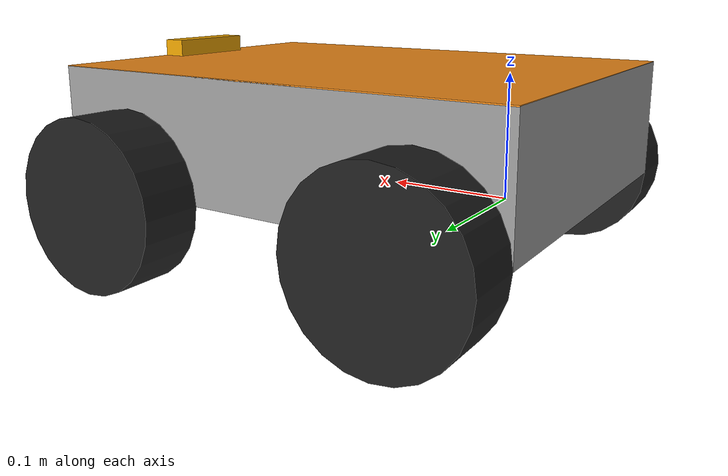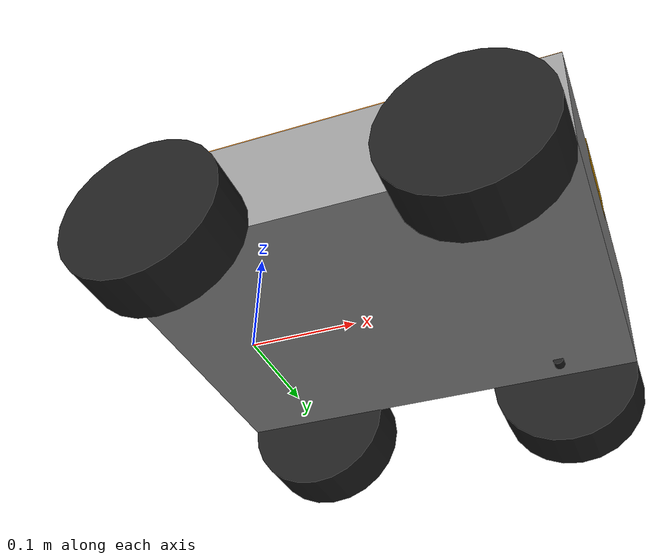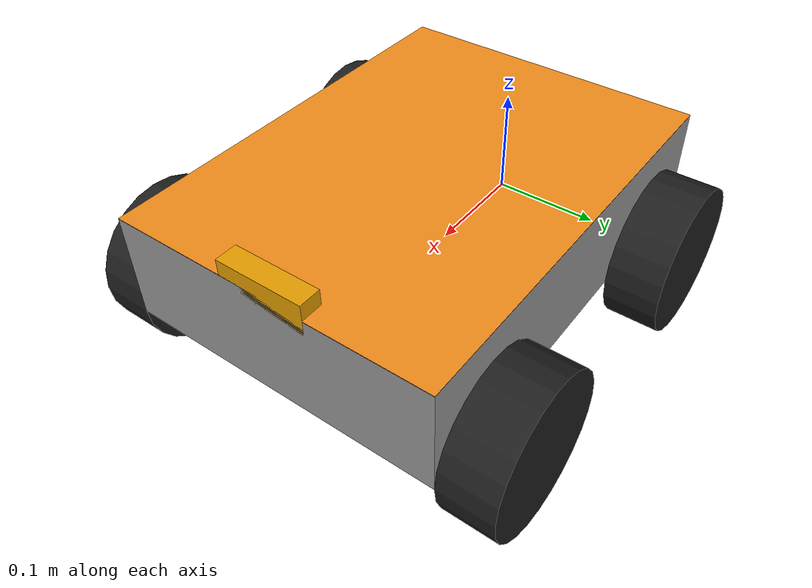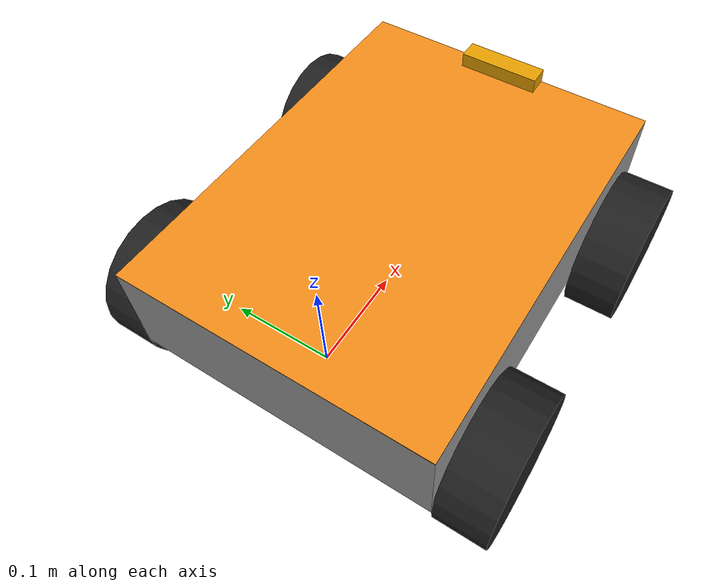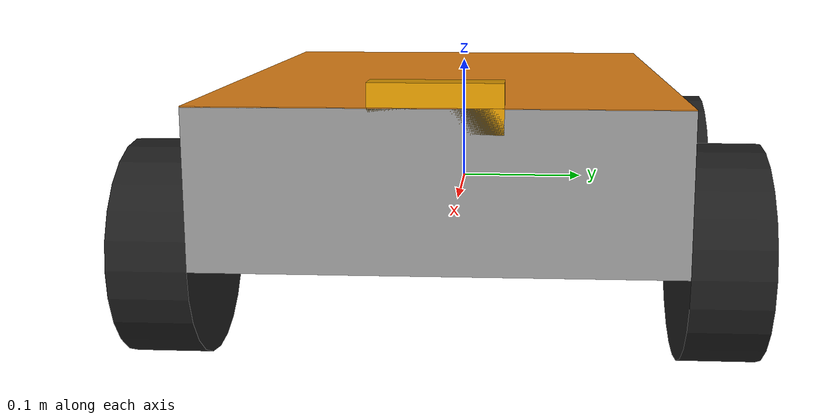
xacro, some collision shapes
<?xml version="1.0"?>
<robot
  name="akm" xmlns:xacro="http://ros.org/wiki/xacro">
  <xacro:include filename="$(find akm_simu)/urdf/ackermann.xacro"/>
  <xacro:include filename="$(find akm_simu)/urdf/akm_ackermann_model.gazebo.xacro"/>
  <xacro:include filename="$(find akm_simu)/urdf/common_properties.xacro"/>
  <xacro:include filename="$(find akm_simu)/urdf/kinect_gazebo.xacro"/>

  <xacro:property name="kinect_offset_x" value="0.320" />
  <xacro:property name="kinect_offset_y" value="0.0" />
  <xacro:property name="kinect_offset_z" value="0.1" />
  <xacro:property name="M_PI" value="3.14159" />

  <xacro:kinect_camera prefix="camera"/>
  <joint name="kinect_frame_joint" type="fixed">
    <origin xyz="${kinect_offset_x} ${kinect_offset_y} ${kinect_offset_z}" rpy="0 0 0" />
    <parent link="ORB_SLAM3"/>
    <child link="camera_link"/>
  </joint>

  <!-- Body -->
  <link
    name="ORB_SLAM3">
    <inertial>
      <origin
        xyz="0 0 0"
        rpy="0 0 0" />
      <mass
        value="5" />
      <inertia
        ixx="0.041667"
        ixy="0.0"
        ixz="0.0"
        iyy="0.070833"
        iyz="0.0"
        izz="0.104167" />
    </inertial>
    <visual>
      <origin
        xyz="0.13 0 0.05"
        rpy="0 0 0" />
      <geometry>
        <box size="0.4 0.3 0.1" />
      </geometry>
      <material name="grey" />
    </visual>
    <collision>
      <origin
        xyz="0.13 0 0.05"
        rpy="0 0 0" />
      <geometry>
        <box size="0.4 0.2 0.1" />
      </geometry>
    </collision>
  </link>

  <!-- Picture -->
  <link
    name="pic_link">
    <visual>
      <origin
        xyz="0 0 0"
        rpy="0 0 0" />
      <geometry>
        <box size="0.4 0.3 0.001" />
      </geometry>
      <material name="orange" />
    </visual>
  </link>
  <joint
    name="joint_pic"
    type="fixed">
    <origin
      xyz="0.13 0.0 0.1"
      rpy="0 0 0" />
    <parent
      link="ORB_SLAM3" />
    <child
      link="pic_link" />
  </joint>

  <!-- Wheel -->
  <link name="left_steering_hinge">
    <inertial>
      <origin xyz="0 0 0" rpy="0 0 0" />
      <mass value="0.5" />
      <inertia ixx="1.35E-05" ixy="0" ixz="0" iyy="2.5E-05" iyz="0" izz="1.35E-05" />
    </inertial>
    <visual>
      <origin xyz="0 0 0" rpy="1.57 0 0" />
      <geometry>
        <cylinder length="0.01" radius="0.005" />
      </geometry>
      <material name="black" />
    </visual>
    <collision>
      <origin xyz="0 0 0" rpy="1.57 0 0" />
      <geometry>
        <cylinder length="0.01" radius="0.005" />
      </geometry>
    </collision>
  </link>
  <joint name="left_steering_hinge_joint" type="revolute">
    <origin xyz="0.26 0.125 0" rpy="0 0 0" />
    <parent link="ORB_SLAM3" />
    <child link="left_steering_hinge" />
    <axis xyz="0 0 1" />
    <limit lower="-0.6" upper="0.6" effort="5.0" velocity="1000.0"/>
  </joint>
  <xacro:steering_hinge_transmission name="left_steering_hinge" />

  <link name="left_front_wheel">
    <inertial>
      <origin xyz="0 0 0" rpy="0 0 0" />
      <mass value="2" />
      <inertia ixx="0.002867" ixy="0" ixz="0" iyy="0.0049" iyz="0" izz="0.002867" />
    </inertial>
    <visual>
      <origin xyz="0 0 0" rpy="1.57 0 0" />
      <geometry>
        <cylinder length="0.05" radius="0.07" />
      </geometry>
      <material name="black" />
    </visual>
    <collision>
      <origin xyz="0 0 0" rpy="1.57 0 0" />
      <geometry>
        <cylinder length="0.05" radius="0.07" />
      </geometry>
    </collision>
  </link>
  <joint name="left_front_wheel_joint" type="continuous">
    <origin xyz="0 0.05 0" rpy="0 0 0" />
    <parent link="left_steering_hinge" />
    <child link="left_front_wheel" />
    <axis xyz="0 1 0" />
    <limit effort="0" velocity="1000" />
  </joint>
  <xacro:wheel_transmission name="left_front_wheel" />

  <link name="right_steering_hinge">
    <inertial>
      <origin xyz="0 0 0" rpy="0 0 0" />
      <mass value="0.5" />
      <inertia ixx="1.35E-05" ixy="0" ixz="0" iyy="2.5E-05" iyz="0" izz="1.35E-05" />
    </inertial>
    <visual>
      <origin xyz="0 0 0" rpy="1.57 0 0" />
      <geometry>
        <cylinder length="0.01" radius="0.005" />
      </geometry>
      <material name="black" />
    </visual>
    <collision>
      <origin xyz="0 0 0" rpy="1.57 0 0" />
      <geometry>
        <cylinder length="0.01" radius="0.005" />
      </geometry>
    </collision>
  </link>
  <joint name="right_steering_hinge_joint" type="revolute">
    <origin xyz="0.26 -0.125 0" rpy="0 0 0" />
    <parent link="ORB_SLAM3" />
    <child link="right_steering_hinge" />
    <axis xyz="0 0 1" />
    <limit lower="-0.6" upper="0.6" effort="5.0" velocity="1000.0"/>
  </joint>
  <xacro:steering_hinge_transmission name="right_steering_hinge" />

  <link name="right_front_wheel">
    <inertial>
      <origin xyz="0 0 0" rpy="0 0 0" />
      <mass value="2" />
      <inertia ixx="0.002867" ixy="0" ixz="0" iyy="0.0049" iyz="0" izz="0.002867" />
    </inertial>
    <visual>
      <origin xyz="0 0 0" rpy="1.57 0 0" />
      <geometry>
        <cylinder length="0.05" radius="0.07" />
      </geometry>
      <material name="black" />
    </visual>
    <collision>
      <origin xyz="0 0 0" rpy="1.57 0 0" />
      <geometry>
        <cylinder length="0.05" radius="0.07" />
      </geometry>
    </collision>
  </link>
  <joint name="right_front_wheel_joint" type="continuous">
    <origin xyz="0 -0.05 0" rpy="0 0 0" />
    <parent link="right_steering_hinge" />
    <child link="right_front_wheel" />
    <axis xyz="0 1 0" />
    <limit effort="0" velocity="1000" />
  </joint>
  <xacro:wheel_transmission name="right_front_wheel" />

  <link name="left_rear_wheel">
    <inertial>
      <origin xyz="0 0 0" rpy="0 0 0" />
      <mass value="2" />
      <inertia ixx="0.002867" ixy="0" ixz="0" iyy="0.0049" iyz="0" izz="0.002867" />
    </inertial>
    <visual>
      <origin xyz="0 0 0" rpy="1.57 0 0" />
      <geometry>
        <cylinder length="0.05" radius="0.07" />
      </geometry>
      <material name="black" />
    </visual>
    <collision>
      <origin xyz="0 0 0" rpy="1.57 0 0" />
      <geometry>
        <cylinder length="0.05" radius="0.07" />
      </geometry>
    </collision>
  </link>
  <joint name="left_rear_wheel_joint" type="continuous">
    <origin xyz="0 0.175 0" rpy="0 0 0" />
    <parent link="ORB_SLAM3" />
    <child link="left_rear_wheel" />
    <axis xyz="0 1 0" />
    <limit effort="10" velocity="1000" />
  </joint>
  <xacro:wheel_transmission name="left_rear_wheel" />

  <link name="right_rear_wheel">
    <inertial>
      <origin xyz="0 0 0" rpy="0 0 0" />
      <mass value="2" />
      <inertia ixx="0.002867" ixy="0" ixz="0" iyy="0.0049" iyz="0" izz="0.002867" />
    </inertial>
    <visual>
      <origin xyz="0 0 0" rpy="1.57 0 0" />
      <geometry>
        <cylinder length="0.05" radius="0.07" />
      </geometry>
      <material name="black" />
    </visual>
    <collision>
      <origin xyz="0 0 0" rpy="1.57 0 0" />
      <geometry>
        <cylinder length="0.05" radius="0.07" />
      </geometry>
    </collision>
  </link>
  <joint name="right_rear_wheel_joint" type="continuous">
    <origin xyz="0 -0.175 0" rpy="0 0 0" />
    <parent link="ORB_SLAM3" />
    <child link="right_rear_wheel" />
    <axis xyz="0 1 0" />
    <limit effort="10" velocity="1000" />
  </joint>
  <xacro:wheel_transmission name="right_rear_wheel" />

  <!-- Imu -->
  <link name="imu_link"/>
  <joint
    name="joint_imu"
    type="fixed">
    <origin
      xyz="0 0 0"
      rpy="0 0 0" />
    <parent
      link="ORB_SLAM3" />
    <child
      link="imu_link" />
    <axis
      xyz="0 0 0" />
    <safety_controller
      k_velocity="0" />
  </joint>

  <!-- Camera -->
<!--  &lt;!&ndash; Camera &ndash;&gt;-->
<!--              xyz="0 0 0"-->
</robot>

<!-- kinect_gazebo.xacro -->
<robot xmlns:xacro="http://www.ros.org/wiki/xacro" name="kinect_camera">

    <xacro:macro name="kinect_camera" params="prefix:=camera">
        <!-- Create kinect reference frame -->
        <!-- Add mesh for kinect -->
        <link name="${prefix}_link">
            <origin xyz="0 0 0" rpy="0 0 0"/>
            <visual>
                <origin xyz="0 0 0" rpy="0 0 ${M_PI/2}"/>
                <geometry>
                    <mesh filename="package://akm_simu/meshes/kinect.dae" scale="0.4 0.4 0.4" />
                </geometry>
            </visual>
            <collision>
                <geometry>
                    <box size="0.02 0.08 0.03"/>
                </geometry>
            </collision>
        </link>

        <joint name="${prefix}_optical_joint" type="fixed">
            <origin xyz="0 0 0" rpy="-1.5708 0 -1.5708"/>
            <parent link="${prefix}_link"/>
            <child link="${prefix}_frame_optical"/>
        </joint>

        <link name="${prefix}_frame_optical"/>

        <gazebo reference="${prefix}_link">
            <sensor type="depth" name="${prefix}">
                <always_on>true</always_on>
                <update_rate>30.0</update_rate>
                <camera>
                    <horizontal_fov>${60.0*M_PI/180.0}</horizontal_fov>
                    <image>
                        <format>R8G8B8</format>
                        <width>640</width>
                        <height>480</height>
                    </image>
                    <clip>
                        <near>0.05</near>
                        <far>20.0</far>
                    </clip>
                </camera>
                <plugin name="kinect_${prefix}_controller" filename="libgazebo_ros_openni_kinect.so">
                    <cameraName>${prefix}</cameraName>
                    <alwaysOn>true</alwaysOn>
                    <updateRate>10</updateRate>
                    <imageTopicName>rgb/image_raw</imageTopicName>
                    <depthImageTopicName>depth/image_raw</depthImageTopicName>
                    <pointCloudTopicName>depth/points</pointCloudTopicName>
                    <cameraInfoTopicName>rgb/camera_info</cameraInfoTopicName>
                    <depthImageCameraInfoTopicName>depth/camera_info</depthImageCameraInfoTopicName>
                    <frameName>${prefix}_frame_optical</frameName>
                    <baseline>0.1</baseline>
                    <distortion_k1>0.0</distortion_k1>
                    <distortion_k2>0.0</distortion_k2>
                    <distortion_k3>0.0</distortion_k3>
                    <distortion_t1>0.0</distortion_t1>
                    <distortion_t2>0.0</distortion_t2>
                    <pointCloudCutoff>0.4</pointCloudCutoff>
                </plugin>
            </sensor>
        </gazebo>

    </xacro:macro>
</robot>
